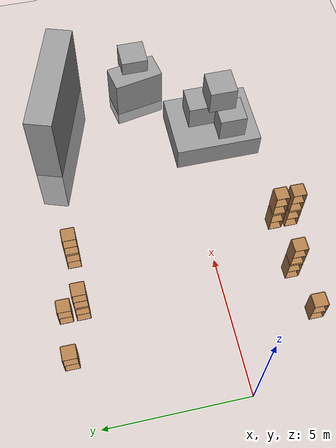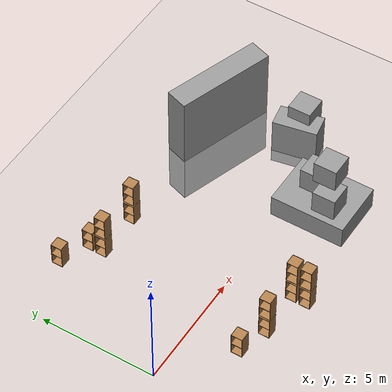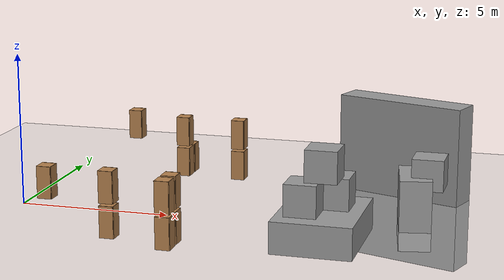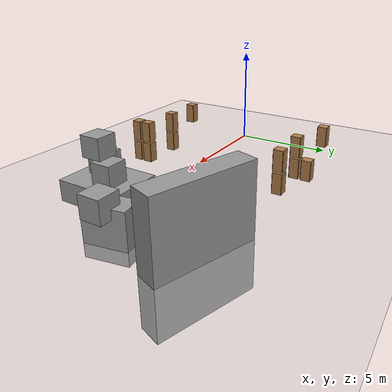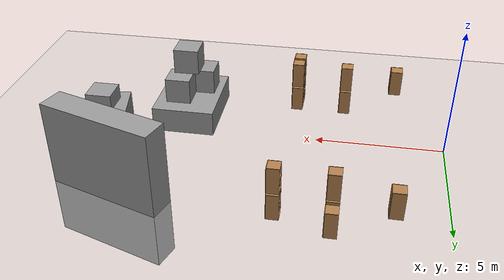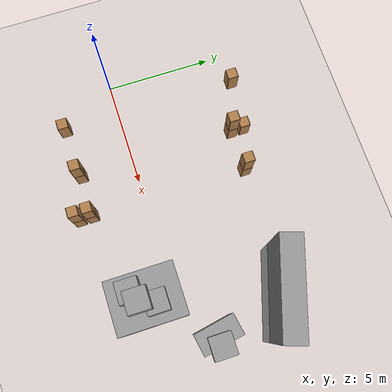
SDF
<sdf version="1.7">
 <world name="default">
  <model name="ground_plane">
   <static>1</static>
   <link name="link">
    <collision name="collision">
     <geometry><plane><normal>0 0 1</normal><size>100 100</size></plane></geometry>
     <surface><friction><ode><mu>100</mu><mu2>50</mu2></ode></friction></surface>
    </collision>
    <visual name="visual">
     <cast_shadows>0</cast_shadows>
     <geometry><plane><normal>0 0 1</normal><size>100 100</size></plane></geometry>
     <material>
      <script><uri>file://media/materials/scripts/gazebo.material</uri><name>Gazebo/Grey</name></script>
     </material>
    </visual>
   </link>
  </model>
  <model name="cabinet">
   <static>1</static>
   <link name="cabinet_bottom_plate">
    <inertial>
     <pose>0 0 -1 0 -0 0</pose>
     <inertia><ixx>2.05</ixx><ixy>0</ixy><ixz>0</ixz><iyy>2.05</iyy><iyz>0</iyz><izz>2.05</izz></inertia>
     <mass>25</mass>
    </inertial>
    <collision name="cabinet_bottom_plate_geom">
     <pose>0 0 0.01 0 -0 0</pose>
     <geometry><box><size>0.45 0.45 0.02</size></box></geometry>
    </collision>
    <visual name="cabinet_bottom_plate_geom_visual">
     <pose>0 0 0.01 0 -0 0</pose>
     <geometry><box><size>0.45 0.45 0.02</size></box></geometry>
     <material>
      <script><uri>file://media/materials/scripts/gazebo.material</uri><name>Gazebo/Wood</name></script>
     </material>
    </visual>
    <collision name="cabinet_bottom_plate_geom_cabinet_back_plate">
     <pose>0.235 0 0.51 0 -0 0</pose>
     <geometry><box><size>0.02 0.45 1.02</size></box></geometry>
    </collision>
    <visual name="cabinet_bottom_plate_geom_cabinet_back_plate_visual">
     <pose>0.235 0 0.51 0 -0 0</pose>
     <geometry><box><size>0.02 0.45 1.02</size></box></geometry>
     <material>
      <script><uri>file://media/materials/scripts/gazebo.material</uri><name>Gazebo/Wood</name></script>
     </material>
    </visual>
    <collision name="cabinet_bottom_plate_geom_cabinet_left_plate">
     <pose>0 0.235 0.51 0 -0 0</pose>
     <geometry><box><size>0.45 0.02 1.02</size></box></geometry>
    </collision>
    <visual name="cabinet_bottom_plate_geom_cabinet_left_plate_visual">
     <pose>0 0.235 0.51 0 -0 0</pose>
     <geometry><box><size>0.45 0.02 1.02</size></box></geometry>
     <material>
      <script><uri>file://media/materials/scripts/gazebo.material</uri><name>Gazebo/Wood</name></script>
     </material>
    </visual>
    <collision name="cabinet_bottom_plate_geom_cabinet_middle_plate">
     <pose>0 0 0.51 0 -0 0</pose>
     <geometry><box><size>0.45 0.45 0.02</size></box></geometry>
    </collision>
    <visual name="cabinet_bottom_plate_geom_cabinet_middle_plate_visual">
     <pose>0 0 0.51 0 -0 0</pose>
     <geometry><box><size>0.45 0.45 0.02</size></box></geometry>
     <material>
      <script><uri>file://media/materials/scripts/gazebo.material</uri><name>Gazebo/Wood</name></script>
     </material>
    </visual>
    <collision name="cabinet_bottom_plate_geom_cabinet_right_plate">
     <pose>0 -0.235 0.51 0 -0 0</pose>
     <geometry><box><size>0.45 0.02 1.02</size></box></geometry>
    </collision>
    <visual name="cabinet_bottom_plate_geom_cabinet_right_plate_visual">
     <pose>0 -0.235 0.51 0 -0 0</pose>
     <geometry><box><size>0.45 0.02 1.02</size></box></geometry>
     <material>
      <script><uri>file://media/materials/scripts/gazebo.material</uri><name>Gazebo/Wood</name></script>
     </material>
    </visual>
    <collision name="cabinet_bottom_plate_geom_cabinet_top_plate">
     <pose>0 0 1.01 0 -0 0</pose>
     <geometry><box><size>0.45 0.45 0.02</size></box></geometry>
    </collision>
    <visual name="cabinet_bottom_plate_geom_cabinet_top_plate_visual">
     <pose>0 0 1.01 0 -0 0</pose>
     <geometry><box><size>0.45 0.45 0.02</size></box></geometry>
     <material>
      <script><uri>file://media/materials/scripts/gazebo.material</uri><name>Gazebo/Wood</name></script>
     </material>
    </visual>
   </link>
   <pose>4 4.9 0 0 -0 0</pose>
  </model>
  <model name="cabinet_0">
   <static>1</static>
   <link name="cabinet_bottom_plate">
    <inertial>
     <pose>0 0 -1 0 -0 0</pose>
     <inertia><ixx>2.05</ixx><ixy>0</ixy><ixz>0</ixz><iyy>2.05</iyy><iyz>0</iyz><izz>2.05</izz></inertia>
     <mass>25</mass>
    </inertial>
    <collision name="cabinet_bottom_plate_geom">
     <pose>0 0 0.01 0 -0 0</pose>
     <geometry><box><size>0.45 0.45 0.02</size></box></geometry>
    </collision>
    <visual name="cabinet_bottom_plate_geom_visual">
     <pose>0 0 0.01 0 -0 0</pose>
     <geometry><box><size>0.45 0.45 0.02</size></box></geometry>
     <material>
      <script><uri>file://media/materials/scripts/gazebo.material</uri><name>Gazebo/Wood</name></script>
     </material>
    </visual>
    <collision name="cabinet_bottom_plate_geom_cabinet_back_plate">
     <pose>0.235 0 0.51 0 -0 0</pose>
     <geometry><box><size>0.02 0.45 1.02</size></box></geometry>
    </collision>
    <visual name="cabinet_bottom_plate_geom_cabinet_back_plate_visual">
     <pose>0.235 0 0.51 0 -0 0</pose>
     <geometry><box><size>0.02 0.45 1.02</size></box></geometry>
     <material>
      <script><uri>file://media/materials/scripts/gazebo.material</uri><name>Gazebo/Wood</name></script>
     </material>
    </visual>
    <collision name="cabinet_bottom_plate_geom_cabinet_left_plate">
     <pose>0 0.235 0.51 0 -0 0</pose>
     <geometry><box><size>0.45 0.02 1.02</size></box></geometry>
    </collision>
    <visual name="cabinet_bottom_plate_geom_cabinet_left_plate_visual">
     <pose>0 0.235 0.51 0 -0 0</pose>
     <geometry><box><size>0.45 0.02 1.02</size></box></geometry>
     <material>
      <script><uri>file://media/materials/scripts/gazebo.material</uri><name>Gazebo/Wood</name></script>
     </material>
    </visual>
    <collision name="cabinet_bottom_plate_geom_cabinet_middle_plate">
     <pose>0 0 0.51 0 -0 0</pose>
     <geometry><box><size>0.45 0.45 0.02</size></box></geometry>
    </collision>
    <visual name="cabinet_bottom_plate_geom_cabinet_middle_plate_visual">
     <pose>0 0 0.51 0 -0 0</pose>
     <geometry><box><size>0.45 0.45 0.02</size></box></geometry>
     <material>
      <script><uri>file://media/materials/scripts/gazebo.material</uri><name>Gazebo/Wood</name></script>
     </material>
    </visual>
    <collision name="cabinet_bottom_plate_geom_cabinet_right_plate">
     <pose>0 -0.235 0.51 0 -0 0</pose>
     <geometry><box><size>0.45 0.02 1.02</size></box></geometry>
    </collision>
    <visual name="cabinet_bottom_plate_geom_cabinet_right_plate_visual">
     <pose>0 -0.235 0.51 0 -0 0</pose>
     <geometry><box><size>0.45 0.02 1.02</size></box></geometry>
     <material>
      <script><uri>file://media/materials/scripts/gazebo.material</uri><name>Gazebo/Wood</name></script>
     </material>
    </visual>
    <collision name="cabinet_bottom_plate_geom_cabinet_top_plate">
     <pose>0 0 1.01 0 -0 0</pose>
     <geometry><box><size>0.45 0.45 0.02</size></box></geometry>
    </collision>
    <visual name="cabinet_bottom_plate_geom_cabinet_top_plate_visual">
     <pose>0 0 1.01 0 -0 0</pose>
     <geometry><box><size>0.45 0.45 0.02</size></box></geometry>
     <material>
      <script><uri>file://media/materials/scripts/gazebo.material</uri><name>Gazebo/Wood</name></script>
     </material>
    </visual>
   </link>
   <pose>4 5.5 0 0 -0 0</pose>
  </model>
  <model name="cabinet_26">
   <static>1</static>
   <link name="cabinet_bottom_plate">
    <inertial>
     <pose>0 0 -1 0 -0 0</pose>
     <inertia><ixx>2.05</ixx><ixy>0</ixy><ixz>0</ixz><iyy>2.05</iyy><iyz>0</iyz><izz>2.05</izz></inertia>
     <mass>25</mass>
    </inertial>
    <collision name="cabinet_bottom_plate_geom">
     <pose>0 0 0.01 0 -0 0</pose>
     <geometry><box><size>0.45 0.45 0.02</size></box></geometry>
    </collision>
    <visual name="cabinet_bottom_plate_geom_visual">
     <pose>0 0 0.01 0 -0 0</pose>
     <geometry><box><size>0.45 0.45 0.02</size></box></geometry>
     <material>
      <script><uri>file://media/materials/scripts/gazebo.material</uri><name>Gazebo/Wood</name></script>
     </material>
    </visual>
    <collision name="cabinet_bottom_plate_geom_cabinet_back_plate">
     <pose>0.235 0 0.51 0 -0 0</pose>
     <geometry><box><size>0.02 0.45 1.02</size></box></geometry>
    </collision>
    <visual name="cabinet_bottom_plate_geom_cabinet_back_plate_visual">
     <pose>0.235 0 0.51 0 -0 0</pose>
     <geometry><box><size>0.02 0.45 1.02</size></box></geometry>
     <material>
      <script><uri>file://media/materials/scripts/gazebo.material</uri><name>Gazebo/Wood</name></script>
     </material>
    </visual>
    <collision name="cabinet_bottom_plate_geom_cabinet_left_plate">
     <pose>0 0.235 0.51 0 -0 0</pose>
     <geometry><box><size>0.45 0.02 1.02</size></box></geometry>
    </collision>
    <visual name="cabinet_bottom_plate_geom_cabinet_left_plate_visual">
     <pose>0 0.235 0.51 0 -0 0</pose>
     <geometry><box><size>0.45 0.02 1.02</size></box></geometry>
     <material>
      <script><uri>file://media/materials/scripts/gazebo.material</uri><name>Gazebo/Wood</name></script>
     </material>
    </visual>
    <collision name="cabinet_bottom_plate_geom_cabinet_middle_plate">
     <pose>0 0 0.51 0 -0 0</pose>
     <geometry><box><size>0.45 0.45 0.02</size></box></geometry>
    </collision>
    <visual name="cabinet_bottom_plate_geom_cabinet_middle_plate_visual">
     <pose>0 0 0.51 0 -0 0</pose>
     <geometry><box><size>0.45 0.45 0.02</size></box></geometry>
     <material>
      <script><uri>file://media/materials/scripts/gazebo.material</uri><name>Gazebo/Wood</name></script>
     </material>
    </visual>
    <collision name="cabinet_bottom_plate_geom_cabinet_right_plate">
     <pose>0 -0.235 0.51 0 -0 0</pose>
     <geometry><box><size>0.45 0.02 1.02</size></box></geometry>
    </collision>
    <visual name="cabinet_bottom_plate_geom_cabinet_right_plate_visual">
     <pose>0 -0.235 0.51 0 -0 0</pose>
     <geometry><box><size>0.45 0.02 1.02</size></box></geometry>
     <material>
      <script><uri>file://media/materials/scripts/gazebo.material</uri><name>Gazebo/Wood</name></script>
     </material>
    </visual>
    <collision name="cabinet_bottom_plate_geom_cabinet_top_plate">
     <pose>0 0 1.01 0 -0 0</pose>
     <geometry><box><size>0.45 0.45 0.02</size></box></geometry>
    </collision>
    <visual name="cabinet_bottom_plate_geom_cabinet_top_plate_visual">
     <pose>0 0 1.01 0 -0 0</pose>
     <geometry><box><size>0.45 0.45 0.02</size></box></geometry>
     <material>
      <script><uri>file://media/materials/scripts/gazebo.material</uri><name>Gazebo/Wood</name></script>
     </material>
    </visual>
   </link>
   <pose>4 -2.5 0 0 -0 0</pose>
  </model>
  <model name="cabinet_40">
   <static>1</static>
   <link name="cabinet_bottom_plate">
    <inertial>
     <pose>0 0 -1 0 -0 0</pose>
     <inertia><ixx>2.05</ixx><ixy>0</ixy><ixz>0</ixz><iyy>2.05</iyy><iyz>0</iyz><izz>2.05</izz></inertia>
     <mass>25</mass>
    </inertial>
    <collision name="cabinet_bottom_plate_geom">
     <pose>0 0 0.01 0 -0 0</pose>
     <geometry><box><size>0.45 0.45 0.02</size></box></geometry>
    </collision>
    <visual name="cabinet_bottom_plate_geom_visual">
     <pose>0 0 0.01 0 -0 0</pose>
     <geometry><box><size>0.45 0.45 0.02</size></box></geometry>
     <material>
      <script><uri>file://media/materials/scripts/gazebo.material</uri><name>Gazebo/Wood</name></script>
     </material>
    </visual>
    <collision name="cabinet_bottom_plate_geom_cabinet_back_plate">
     <pose>0.235 0 0.51 0 -0 0</pose>
     <geometry><box><size>0.02 0.45 1.02</size></box></geometry>
    </collision>
    <visual name="cabinet_bottom_plate_geom_cabinet_back_plate_visual">
     <pose>0.235 0 0.51 0 -0 0</pose>
     <geometry><box><size>0.02 0.45 1.02</size></box></geometry>
     <material>
      <script><uri>file://media/materials/scripts/gazebo.material</uri><name>Gazebo/Wood</name></script>
     </material>
    </visual>
    <collision name="cabinet_bottom_plate_geom_cabinet_left_plate">
     <pose>0 0.235 0.51 0 -0 0</pose>
     <geometry><box><size>0.45 0.02 1.02</size></box></geometry>
    </collision>
    <visual name="cabinet_bottom_plate_geom_cabinet_left_plate_visual">
     <pose>0 0.235 0.51 0 -0 0</pose>
     <geometry><box><size>0.45 0.02 1.02</size></box></geometry>
     <material>
      <script><uri>file://media/materials/scripts/gazebo.material</uri><name>Gazebo/Wood</name></script>
     </material>
    </visual>
    <collision name="cabinet_bottom_plate_geom_cabinet_middle_plate">
     <pose>0 0 0.51 0 -0 0</pose>
     <geometry><box><size>0.45 0.45 0.02</size></box></geometry>
    </collision>
    <visual name="cabinet_bottom_plate_geom_cabinet_middle_plate_visual">
     <pose>0 0 0.51 0 -0 0</pose>
     <geometry><box><size>0.45 0.45 0.02</size></box></geometry>
     <material>
      <script><uri>file://media/materials/scripts/gazebo.material</uri><name>Gazebo/Wood</name></script>
     </material>
    </visual>
    <collision name="cabinet_bottom_plate_geom_cabinet_right_plate">
     <pose>0 -0.235 0.51 0 -0 0</pose>
     <geometry><box><size>0.45 0.02 1.02</size></box></geometry>
    </collision>
    <visual name="cabinet_bottom_plate_geom_cabinet_right_plate_visual">
     <pose>0 -0.235 0.51 0 -0 0</pose>
     <geometry><box><size>0.45 0.02 1.02</size></box></geometry>
     <material>
      <script><uri>file://media/materials/scripts/gazebo.material</uri><name>Gazebo/Wood</name></script>
     </material>
    </visual>
    <collision name="cabinet_bottom_plate_geom_cabinet_top_plate">
     <pose>0 0 1.01 0 -0 0</pose>
     <geometry><box><size>0.45 0.45 0.02</size></box></geometry>
    </collision>
    <visual name="cabinet_bottom_plate_geom_cabinet_top_plate_visual">
     <pose>0 0 1.01 0 -0 0</pose>
     <geometry><box><size>0.45 0.45 0.02</size></box></geometry>
     <material>
      <script><uri>file://media/materials/scripts/gazebo.material</uri><name>Gazebo/Wood</name></script>
     </material>
    </visual>
   </link>
   <pose>6 -2.5 0 0 -0 0</pose>
  </model>
  <model name="cabinet_41">
   <static>1</static>
   <link name="cabinet_bottom_plate">
    <inertial>
     <pose>0 0 -1 0 -0 0</pose>
     <inertia><ixx>2.05</ixx><ixy>0</ixy><ixz>0</ixz><iyy>2.05</iyy><iyz>0</iyz><izz>2.05</izz></inertia>
     <mass>25</mass>
    </inertial>
    <collision name="cabinet_bottom_plate_geom">
     <pose>0 0 0.01 0 -0 0</pose>
     <geometry><box><size>0.45 0.45 0.02</size></box></geometry>
    </collision>
    <visual name="cabinet_bottom_plate_geom_visual">
     <pose>0 0 0.01 0 -0 0</pose>
     <geometry><box><size>0.45 0.45 0.02</size></box></geometry>
     <material>
      <script><uri>file://media/materials/scripts/gazebo.material</uri><name>Gazebo/Wood</name></script>
     </material>
    </visual>
    <collision name="cabinet_bottom_plate_geom_cabinet_back_plate">
     <pose>0.235 0 0.51 0 -0 0</pose>
     <geometry><box><size>0.02 0.45 1.02</size></box></geometry>
    </collision>
    <visual name="cabinet_bottom_plate_geom_cabinet_back_plate_visual">
     <pose>0.235 0 0.51 0 -0 0</pose>
     <geometry><box><size>0.02 0.45 1.02</size></box></geometry>
     <material>
      <script><uri>file://media/materials/scripts/gazebo.material</uri><name>Gazebo/Wood</name></script>
     </material>
    </visual>
    <collision name="cabinet_bottom_plate_geom_cabinet_left_plate">
     <pose>0 0.235 0.51 0 -0 0</pose>
     <geometry><box><size>0.45 0.02 1.02</size></box></geometry>
    </collision>
    <visual name="cabinet_bottom_plate_geom_cabinet_left_plate_visual">
     <pose>0 0.235 0.51 0 -0 0</pose>
     <geometry><box><size>0.45 0.02 1.02</size></box></geometry>
     <material>
      <script><uri>file://media/materials/scripts/gazebo.material</uri><name>Gazebo/Wood</name></script>
     </material>
    </visual>
    <collision name="cabinet_bottom_plate_geom_cabinet_middle_plate">
     <pose>0 0 0.51 0 -0 0</pose>
     <geometry><box><size>0.45 0.45 0.02</size></box></geometry>
    </collision>
    <visual name="cabinet_bottom_plate_geom_cabinet_middle_plate_visual">
     <pose>0 0 0.51 0 -0 0</pose>
     <geometry><box><size>0.45 0.45 0.02</size></box></geometry>
     <material>
      <script><uri>file://media/materials/scripts/gazebo.material</uri><name>Gazebo/Wood</name></script>
     </material>
    </visual>
    <collision name="cabinet_bottom_plate_geom_cabinet_right_plate">
     <pose>0 -0.235 0.51 0 -0 0</pose>
     <geometry><box><size>0.45 0.02 1.02</size></box></geometry>
    </collision>
    <visual name="cabinet_bottom_plate_geom_cabinet_right_plate_visual">
     <pose>0 -0.235 0.51 0 -0 0</pose>
     <geometry><box><size>0.45 0.02 1.02</size></box></geometry>
     <material>
      <script><uri>file://media/materials/scripts/gazebo.material</uri><name>Gazebo/Wood</name></script>
     </material>
    </visual>
    <collision name="cabinet_bottom_plate_geom_cabinet_top_plate">
     <pose>0 0 1.01 0 -0 0</pose>
     <geometry><box><size>0.45 0.45 0.02</size></box></geometry>
    </collision>
    <visual name="cabinet_bottom_plate_geom_cabinet_top_plate_visual">
     <pose>0 0 1.01 0 -0 0</pose>
     <geometry><box><size>0.45 0.45 0.02</size></box></geometry>
     <material>
      <script><uri>file://media/materials/scripts/gazebo.material</uri><name>Gazebo/Wood</name></script>
     </material>
    </visual>
   </link>
   <pose>6 -3.1 0 0 -0 0</pose>
  </model>
  <model name="cabinet_61">
   <static>1</static>
   <link name="cabinet_bottom_plate">
    <inertial>
     <pose>0 0 -1 0 -0 0</pose>
     <inertia><ixx>2.05</ixx><ixy>0</ixy><ixz>0</ixz><iyy>2.05</iyy><iyz>0</iyz><izz>2.05</izz></inertia>
     <mass>25</mass>
    </inertial>
    <collision name="cabinet_bottom_plate_geom">
     <pose>0 0 0.01 0 -0 0</pose>
     <geometry><box><size>0.45 0.45 0.02</size></box></geometry>
    </collision>
    <visual name="cabinet_bottom_plate_geom_visual">
     <pose>0 0 0.01 0 -0 0</pose>
     <geometry><box><size>0.45 0.45 0.02</size></box></geometry>
     <material>
      <script><uri>file://media/materials/scripts/gazebo.material</uri><name>Gazebo/Wood</name></script>
     </material>
    </visual>
    <collision name="cabinet_bottom_plate_geom_cabinet_back_plate">
     <pose>0.235 0 0.51 0 -0 0</pose>
     <geometry><box><size>0.02 0.45 1.02</size></box></geometry>
    </collision>
    <visual name="cabinet_bottom_plate_geom_cabinet_back_plate_visual">
     <pose>0.235 0 0.51 0 -0 0</pose>
     <geometry><box><size>0.02 0.45 1.02</size></box></geometry>
     <material>
      <script><uri>file://media/materials/scripts/gazebo.material</uri><name>Gazebo/Wood</name></script>
     </material>
    </visual>
    <collision name="cabinet_bottom_plate_geom_cabinet_left_plate">
     <pose>0 0.235 0.51 0 -0 0</pose>
     <geometry><box><size>0.45 0.02 1.02</size></box></geometry>
    </collision>
    <visual name="cabinet_bottom_plate_geom_cabinet_left_plate_visual">
     <pose>0 0.235 0.51 0 -0 0</pose>
     <geometry><box><size>0.45 0.02 1.02</size></box></geometry>
     <material>
      <script><uri>file://media/materials/scripts/gazebo.material</uri><name>Gazebo/Wood</name></script>
     </material>
    </visual>
    <collision name="cabinet_bottom_plate_geom_cabinet_middle_plate">
     <pose>0 0 0.51 0 -0 0</pose>
     <geometry><box><size>0.45 0.45 0.02</size></box></geometry>
    </collision>
    <visual name="cabinet_bottom_plate_geom_cabinet_middle_plate_visual">
     <pose>0 0 0.51 0 -0 0</pose>
     <geometry><box><size>0.45 0.45 0.02</size></box></geometry>
     <material>
      <script><uri>file://media/materials/scripts/gazebo.material</uri><name>Gazebo/Wood</name></script>
     </material>
    </visual>
    <collision name="cabinet_bottom_plate_geom_cabinet_right_plate">
     <pose>0 -0.235 0.51 0 -0 0</pose>
     <geometry><box><size>0.45 0.02 1.02</size></box></geometry>
    </collision>
    <visual name="cabinet_bottom_plate_geom_cabinet_right_plate_visual">
     <pose>0 -0.235 0.51 0 -0 0</pose>
     <geometry><box><size>0.45 0.02 1.02</size></box></geometry>
     <material>
      <script><uri>file://media/materials/scripts/gazebo.material</uri><name>Gazebo/Wood</name></script>
     </material>
    </visual>
    <collision name="cabinet_bottom_plate_geom_cabinet_top_plate">
     <pose>0 0 1.01 0 -0 0</pose>
     <geometry><box><size>0.45 0.45 0.02</size></box></geometry>
    </collision>
    <visual name="cabinet_bottom_plate_geom_cabinet_top_plate_visual">
     <pose>0 0 1.01 0 -0 0</pose>
     <geometry><box><size>0.45 0.45 0.02</size></box></geometry>
     <material>
      <script><uri>file://media/materials/scripts/gazebo.material</uri><name>Gazebo/Wood</name></script>
     </material>
    </visual>
   </link>
   <pose>6 4.9 0 0 -0 0</pose>
  </model>
  <model name="cabinet_16_clone_0">
   <static>1</static>
   <link name="cabinet_bottom_plate">
    <inertial>
     <pose>0 0 -1 0 -0 0</pose>
     <inertia><ixx>2.05</ixx><ixy>0</ixy><ixz>0</ixz><iyy>2.05</iyy><iyz>0</iyz><izz>2.05</izz></inertia>
     <mass>25</mass>
    </inertial>
    <collision name="cabinet_bottom_plate_geom">
     <pose>0 0 0.01 0 -0 0</pose>
     <geometry><box><size>0.45 0.45 0.02</size></box></geometry>
    </collision>
    <visual name="cabinet_bottom_plate_geom_visual">
     <pose>0 0 0.01 0 -0 0</pose>
     <geometry><box><size>0.45 0.45 0.02</size></box></geometry>
     <material>
      <script><uri>file://media/materials/scripts/gazebo.material</uri><name>Gazebo/Wood</name></script>
     </material>
    </visual>
    <collision name="cabinet_bottom_plate_geom_cabinet_back_plate">
     <pose>0.235 0 0.51 0 -0 0</pose>
     <geometry><box><size>0.02 0.45 1.02</size></box></geometry>
    </collision>
    <visual name="cabinet_bottom_plate_geom_cabinet_back_plate_visual">
     <pose>0.235 0 0.51 0 -0 0</pose>
     <geometry><box><size>0.02 0.45 1.02</size></box></geometry>
     <material>
      <script><uri>file://media/materials/scripts/gazebo.material</uri><name>Gazebo/Wood</name></script>
     </material>
    </visual>
    <collision name="cabinet_bottom_plate_geom_cabinet_left_plate">
     <pose>0 0.235 0.51 0 -0 0</pose>
     <geometry><box><size>0.45 0.02 1.02</size></box></geometry>
    </collision>
    <visual name="cabinet_bottom_plate_geom_cabinet_left_plate_visual">
     <pose>0 0.235 0.51 0 -0 0</pose>
     <geometry><box><size>0.45 0.02 1.02</size></box></geometry>
     <material>
      <script><uri>file://media/materials/scripts/gazebo.material</uri><name>Gazebo/Wood</name></script>
     </material>
    </visual>
    <collision name="cabinet_bottom_plate_geom_cabinet_middle_plate">
     <pose>0 0 0.51 0 -0 0</pose>
     <geometry><box><size>0.45 0.45 0.02</size></box></geometry>
    </collision>
    <visual name="cabinet_bottom_plate_geom_cabinet_middle_plate_visual">
     <pose>0 0 0.51 0 -0 0</pose>
     <geometry><box><size>0.45 0.45 0.02</size></box></geometry>
     <material>
      <script><uri>file://media/materials/scripts/gazebo.material</uri><name>Gazebo/Wood</name></script>
     </material>
    </visual>
    <collision name="cabinet_bottom_plate_geom_cabinet_right_plate">
     <pose>0 -0.235 0.51 0 -0 0</pose>
     <geometry><box><size>0.45 0.02 1.02</size></box></geometry>
    </collision>
    <visual name="cabinet_bottom_plate_geom_cabinet_right_plate_visual">
     <pose>0 -0.235 0.51 0 -0 0</pose>
     <geometry><box><size>0.45 0.02 1.02</size></box></geometry>
     <material>
      <script><uri>file://media/materials/scripts/gazebo.material</uri><name>Gazebo/Wood</name></script>
     </material>
    </visual>
    <collision name="cabinet_bottom_plate_geom_cabinet_top_plate">
     <pose>0 0 1.01 0 -0 0</pose>
     <geometry><box><size>0.45 0.45 0.02</size></box></geometry>
    </collision>
    <visual name="cabinet_bottom_plate_geom_cabinet_top_plate_visual">
     <pose>0 0 1.01 0 -0 0</pose>
     <geometry><box><size>0.45 0.45 0.02</size></box></geometry>
     <material>
      <script><uri>file://media/materials/scripts/gazebo.material</uri><name>Gazebo/Wood</name></script>
     </material>
    </visual>
   </link>
   <pose>6 4.9 1.1 0 -0 0</pose>
  </model>
  <model name="cabinet_74">
   <static>1</static>
   <link name="cabinet_bottom_plate">
    <inertial>
     <pose>0 0 -1 0 -0 0</pose>
     <inertia><ixx>2.05</ixx><ixy>0</ixy><ixz>0</ixz><iyy>2.05</iyy><iyz>0</iyz><izz>2.05</izz></inertia>
     <mass>25</mass>
    </inertial>
    <collision name="cabinet_bottom_plate_geom">
     <pose>0 0 0.01 0 -0 0</pose>
     <geometry><box><size>0.45 0.45 0.02</size></box></geometry>
    </collision>
    <visual name="cabinet_bottom_plate_geom_visual">
     <pose>0 0 0.01 0 -0 0</pose>
     <geometry><box><size>0.45 0.45 0.02</size></box></geometry>
     <material>
      <script><uri>file://media/materials/scripts/gazebo.material</uri><name>Gazebo/Wood</name></script>
     </material>
    </visual>
    <collision name="cabinet_bottom_plate_geom_cabinet_back_plate">
     <pose>0.235 0 0.51 0 -0 0</pose>
     <geometry><box><size>0.02 0.45 1.02</size></box></geometry>
    </collision>
    <visual name="cabinet_bottom_plate_geom_cabinet_back_plate_visual">
     <pose>0.235 0 0.51 0 -0 0</pose>
     <geometry><box><size>0.02 0.45 1.02</size></box></geometry>
     <material>
      <script><uri>file://media/materials/scripts/gazebo.material</uri><name>Gazebo/Wood</name></script>
     </material>
    </visual>
    <collision name="cabinet_bottom_plate_geom_cabinet_left_plate">
     <pose>0 0.235 0.51 0 -0 0</pose>
     <geometry><box><size>0.45 0.02 1.02</size></box></geometry>
    </collision>
    <visual name="cabinet_bottom_plate_geom_cabinet_left_plate_visual">
     <pose>0 0.235 0.51 0 -0 0</pose>
     <geometry><box><size>0.45 0.02 1.02</size></box></geometry>
     <material>
      <script><uri>file://media/materials/scripts/gazebo.material</uri><name>Gazebo/Wood</name></script>
     </material>
    </visual>
    <collision name="cabinet_bottom_plate_geom_cabinet_middle_plate">
     <pose>0 0 0.51 0 -0 0</pose>
     <geometry><box><size>0.45 0.45 0.02</size></box></geometry>
    </collision>
    <visual name="cabinet_bottom_plate_geom_cabinet_middle_plate_visual">
     <pose>0 0 0.51 0 -0 0</pose>
     <geometry><box><size>0.45 0.45 0.02</size></box></geometry>
     <material>
      <script><uri>file://media/materials/scripts/gazebo.material</uri><name>Gazebo/Wood</name></script>
     </material>
    </visual>
    <collision name="cabinet_bottom_plate_geom_cabinet_right_plate">
     <pose>0 -0.235 0.51 0 -0 0</pose>
     <geometry><box><size>0.45 0.02 1.02</size></box></geometry>
    </collision>
    <visual name="cabinet_bottom_plate_geom_cabinet_right_plate_visual">
     <pose>0 -0.235 0.51 0 -0 0</pose>
     <geometry><box><size>0.45 0.02 1.02</size></box></geometry>
     <material>
      <script><uri>file://media/materials/scripts/gazebo.material</uri><name>Gazebo/Wood</name></script>
     </material>
    </visual>
    <collision name="cabinet_bottom_plate_geom_cabinet_top_plate">
     <pose>0 0 1.01 0 -0 0</pose>
     <geometry><box><size>0.45 0.45 0.02</size></box></geometry>
    </collision>
    <visual name="cabinet_bottom_plate_geom_cabinet_top_plate_visual">
     <pose>0 0 1.01 0 -0 0</pose>
     <geometry><box><size>0.45 0.45 0.02</size></box></geometry>
     <material>
      <script><uri>file://media/materials/scripts/gazebo.material</uri><name>Gazebo/Wood</name></script>
     </material>
    </visual>
   </link>
   <pose>4 4.9 1.1 0 -0 0</pose>
  </model>
  <model name="cabinet_78">
   <static>1</static>
   <link name="cabinet_bottom_plate">
    <inertial>
     <pose>0 0 -1 0 -0 0</pose>
     <inertia><ixx>2.05</ixx><ixy>0</ixy><ixz>0</ixz><iyy>2.05</iyy><iyz>0</iyz><izz>2.05</izz></inertia>
     <mass>25</mass>
    </inertial>
    <collision name="cabinet_bottom_plate_geom">
     <pose>0 0 0.01 0 -0 0</pose>
     <geometry><box><size>0.45 0.45 0.02</size></box></geometry>
    </collision>
    <visual name="cabinet_bottom_plate_geom_visual">
     <pose>0 0 0.01 0 -0 0</pose>
     <geometry><box><size>0.45 0.45 0.02</size></box></geometry>
     <material>
      <script><uri>file://media/materials/scripts/gazebo.material</uri><name>Gazebo/Wood</name></script>
     </material>
    </visual>
    <collision name="cabinet_bottom_plate_geom_cabinet_back_plate">
     <pose>0.235 0 0.51 0 -0 0</pose>
     <geometry><box><size>0.02 0.45 1.02</size></box></geometry>
    </collision>
    <visual name="cabinet_bottom_plate_geom_cabinet_back_plate_visual">
     <pose>0.235 0 0.51 0 -0 0</pose>
     <geometry><box><size>0.02 0.45 1.02</size></box></geometry>
     <material>
      <script><uri>file://media/materials/scripts/gazebo.material</uri><name>Gazebo/Wood</name></script>
     </material>
    </visual>
    <collision name="cabinet_bottom_plate_geom_cabinet_left_plate">
     <pose>0 0.235 0.51 0 -0 0</pose>
     <geometry><box><size>0.45 0.02 1.02</size></box></geometry>
    </collision>
    <visual name="cabinet_bottom_plate_geom_cabinet_left_plate_visual">
     <pose>0 0.235 0.51 0 -0 0</pose>
     <geometry><box><size>0.45 0.02 1.02</size></box></geometry>
     <material>
      <script><uri>file://media/materials/scripts/gazebo.material</uri><name>Gazebo/Wood</name></script>
     </material>
    </visual>
    <collision name="cabinet_bottom_plate_geom_cabinet_middle_plate">
     <pose>0 0 0.51 0 -0 0</pose>
     <geometry><box><size>0.45 0.45 0.02</size></box></geometry>
    </collision>
    <visual name="cabinet_bottom_plate_geom_cabinet_middle_plate_visual">
     <pose>0 0 0.51 0 -0 0</pose>
     <geometry><box><size>0.45 0.45 0.02</size></box></geometry>
     <material>
      <script><uri>file://media/materials/scripts/gazebo.material</uri><name>Gazebo/Wood</name></script>
     </material>
    </visual>
    <collision name="cabinet_bottom_plate_geom_cabinet_right_plate">
     <pose>0 -0.235 0.51 0 -0 0</pose>
     <geometry><box><size>0.45 0.02 1.02</size></box></geometry>
    </collision>
    <visual name="cabinet_bottom_plate_geom_cabinet_right_plate_visual">
     <pose>0 -0.235 0.51 0 -0 0</pose>
     <geometry><box><size>0.45 0.02 1.02</size></box></geometry>
     <material>
      <script><uri>file://media/materials/scripts/gazebo.material</uri><name>Gazebo/Wood</name></script>
     </material>
    </visual>
    <collision name="cabinet_bottom_plate_geom_cabinet_top_plate">
     <pose>0 0 1.01 0 -0 0</pose>
     <geometry><box><size>0.45 0.45 0.02</size></box></geometry>
    </collision>
    <visual name="cabinet_bottom_plate_geom_cabinet_top_plate_visual">
     <pose>0 0 1.01 0 -0 0</pose>
     <geometry><box><size>0.45 0.45 0.02</size></box></geometry>
     <material>
      <script><uri>file://media/materials/scripts/gazebo.material</uri><name>Gazebo/Wood</name></script>
     </material>
    </visual>
   </link>
   <pose>6 -2.5 1.1 0 -0 0</pose>
  </model>
  <model name="cabinet_79">
   <static>1</static>
   <link name="cabinet_bottom_plate">
    <inertial>
     <pose>0 0 -1 0 -0 0</pose>
     <inertia><ixx>2.05</ixx><ixy>0</ixy><ixz>0</ixz><iyy>2.05</iyy><iyz>0</iyz><izz>2.05</izz></inertia>
     <mass>25</mass>
    </inertial>
    <collision name="cabinet_bottom_plate_geom">
     <pose>0 0 0.01 0 -0 0</pose>
     <geometry><box><size>0.45 0.45 0.02</size></box></geometry>
    </collision>
    <visual name="cabinet_bottom_plate_geom_visual">
     <pose>0 0 0.01 0 -0 0</pose>
     <geometry><box><size>0.45 0.45 0.02</size></box></geometry>
     <material>
      <script><uri>file://media/materials/scripts/gazebo.material</uri><name>Gazebo/Wood</name></script>
     </material>
    </visual>
    <collision name="cabinet_bottom_plate_geom_cabinet_back_plate">
     <pose>0.235 0 0.51 0 -0 0</pose>
     <geometry><box><size>0.02 0.45 1.02</size></box></geometry>
    </collision>
    <visual name="cabinet_bottom_plate_geom_cabinet_back_plate_visual">
     <pose>0.235 0 0.51 0 -0 0</pose>
     <geometry><box><size>0.02 0.45 1.02</size></box></geometry>
     <material>
      <script><uri>file://media/materials/scripts/gazebo.material</uri><name>Gazebo/Wood</name></script>
     </material>
    </visual>
    <collision name="cabinet_bottom_plate_geom_cabinet_left_plate">
     <pose>0 0.235 0.51 0 -0 0</pose>
     <geometry><box><size>0.45 0.02 1.02</size></box></geometry>
    </collision>
    <visual name="cabinet_bottom_plate_geom_cabinet_left_plate_visual">
     <pose>0 0.235 0.51 0 -0 0</pose>
     <geometry><box><size>0.45 0.02 1.02</size></box></geometry>
     <material>
      <script><uri>file://media/materials/scripts/gazebo.material</uri><name>Gazebo/Wood</name></script>
     </material>
    </visual>
    <collision name="cabinet_bottom_plate_geom_cabinet_middle_plate">
     <pose>0 0 0.51 0 -0 0</pose>
     <geometry><box><size>0.45 0.45 0.02</size></box></geometry>
    </collision>
    <visual name="cabinet_bottom_plate_geom_cabinet_middle_plate_visual">
     <pose>0 0 0.51 0 -0 0</pose>
     <geometry><box><size>0.45 0.45 0.02</size></box></geometry>
     <material>
      <script><uri>file://media/materials/scripts/gazebo.material</uri><name>Gazebo/Wood</name></script>
     </material>
    </visual>
    <collision name="cabinet_bottom_plate_geom_cabinet_right_plate">
     <pose>0 -0.235 0.51 0 -0 0</pose>
     <geometry><box><size>0.45 0.02 1.02</size></box></geometry>
    </collision>
    <visual name="cabinet_bottom_plate_geom_cabinet_right_plate_visual">
     <pose>0 -0.235 0.51 0 -0 0</pose>
     <geometry><box><size>0.45 0.02 1.02</size></box></geometry>
     <material>
      <script><uri>file://media/materials/scripts/gazebo.material</uri><name>Gazebo/Wood</name></script>
     </material>
    </visual>
    <collision name="cabinet_bottom_plate_geom_cabinet_top_plate">
     <pose>0 0 1.01 0 -0 0</pose>
     <geometry><box><size>0.45 0.45 0.02</size></box></geometry>
    </collision>
    <visual name="cabinet_bottom_plate_geom_cabinet_top_plate_visual">
     <pose>0 0 1.01 0 -0 0</pose>
     <geometry><box><size>0.45 0.45 0.02</size></box></geometry>
     <material>
      <script><uri>file://media/materials/scripts/gazebo.material</uri><name>Gazebo/Wood</name></script>
     </material>
    </visual>
   </link>
   <pose>6 -3.1 1.1 0 -0 0</pose>
  </model>
  <model name="cabinet_91">
   <static>1</static>
   <link name="cabinet_bottom_plate">
    <inertial>
     <pose>0 0 -1 0 -0 0</pose>
     <inertia><ixx>2.05</ixx><ixy>0</ixy><ixz>0</ixz><iyy>2.05</iyy><iyz>0</iyz><izz>2.05</izz></inertia>
     <mass>25</mass>
    </inertial>
    <collision name="cabinet_bottom_plate_geom">
     <pose>0 0 0.01 0 -0 0</pose>
     <geometry><box><size>0.45 0.45 0.02</size></box></geometry>
    </collision>
    <visual name="cabinet_bottom_plate_geom_visual">
     <pose>0 0 0.01 0 -0 0</pose>
     <geometry><box><size>0.45 0.45 0.02</size></box></geometry>
     <material>
      <script><uri>file://media/materials/scripts/gazebo.material</uri><name>Gazebo/Wood</name></script>
     </material>
    </visual>
    <collision name="cabinet_bottom_plate_geom_cabinet_back_plate">
     <pose>0.235 0 0.51 0 -0 0</pose>
     <geometry><box><size>0.02 0.45 1.02</size></box></geometry>
    </collision>
    <visual name="cabinet_bottom_plate_geom_cabinet_back_plate_visual">
     <pose>0.235 0 0.51 0 -0 0</pose>
     <geometry><box><size>0.02 0.45 1.02</size></box></geometry>
     <material>
      <script><uri>file://media/materials/scripts/gazebo.material</uri><name>Gazebo/Wood</name></script>
     </material>
    </visual>
    <collision name="cabinet_bottom_plate_geom_cabinet_left_plate">
     <pose>0 0.235 0.51 0 -0 0</pose>
     <geometry><box><size>0.45 0.02 1.02</size></box></geometry>
    </collision>
    <visual name="cabinet_bottom_plate_geom_cabinet_left_plate_visual">
     <pose>0 0.235 0.51 0 -0 0</pose>
     <geometry><box><size>0.45 0.02 1.02</size></box></geometry>
     <material>
      <script><uri>file://media/materials/scripts/gazebo.material</uri><name>Gazebo/Wood</name></script>
     </material>
    </visual>
    <collision name="cabinet_bottom_plate_geom_cabinet_middle_plate">
     <pose>0 0 0.51 0 -0 0</pose>
     <geometry><box><size>0.45 0.45 0.02</size></box></geometry>
    </collision>
    <visual name="cabinet_bottom_plate_geom_cabinet_middle_plate_visual">
     <pose>0 0 0.51 0 -0 0</pose>
     <geometry><box><size>0.45 0.45 0.02</size></box></geometry>
     <material>
      <script><uri>file://media/materials/scripts/gazebo.material</uri><name>Gazebo/Wood</name></script>
     </material>
    </visual>
    <collision name="cabinet_bottom_plate_geom_cabinet_right_plate">
     <pose>0 -0.235 0.51 0 -0 0</pose>
     <geometry><box><size>0.45 0.02 1.02</size></box></geometry>
    </collision>
    <visual name="cabinet_bottom_plate_geom_cabinet_right_plate_visual">
     <pose>0 -0.235 0.51 0 -0 0</pose>
     <geometry><box><size>0.45 0.02 1.02</size></box></geometry>
     <material>
      <script><uri>file://media/materials/scripts/gazebo.material</uri><name>Gazebo/Wood</name></script>
     </material>
    </visual>
    <collision name="cabinet_bottom_plate_geom_cabinet_top_plate">
     <pose>0 0 1.01 0 -0 0</pose>
     <geometry><box><size>0.45 0.45 0.02</size></box></geometry>
    </collision>
    <visual name="cabinet_bottom_plate_geom_cabinet_top_plate_visual">
     <pose>0 0 1.01 0 -0 0</pose>
     <geometry><box><size>0.45 0.45 0.02</size></box></geometry>
     <material>
      <script><uri>file://media/materials/scripts/gazebo.material</uri><name>Gazebo/Wood</name></script>
     </material>
    </visual>
   </link>
   <pose>2 5.5 1.1 0 -0 0</pose>
  </model>
  <model name="cabinet_109">
   <static>1</static>
   <link name="cabinet_bottom_plate">
    <inertial>
     <pose>0 0 -1 0 -0 0</pose>
     <inertia><ixx>2.05</ixx><ixy>0</ixy><ixz>0</ixz><iyy>2.05</iyy><iyz>0</iyz><izz>2.05</izz></inertia>
     <mass>25</mass>
    </inertial>
    <collision name="cabinet_bottom_plate_geom">
     <pose>0 0 0.01 0 -0 0</pose>
     <geometry><box><size>0.45 0.45 0.02</size></box></geometry>
    </collision>
    <visual name="cabinet_bottom_plate_geom_visual">
     <pose>0 0 0.01 0 -0 0</pose>
     <geometry><box><size>0.45 0.45 0.02</size></box></geometry>
     <material>
      <script><uri>file://media/materials/scripts/gazebo.material</uri><name>Gazebo/Wood</name></script>
     </material>
    </visual>
    <collision name="cabinet_bottom_plate_geom_cabinet_back_plate">
     <pose>0.235 0 0.51 0 -0 0</pose>
     <geometry><box><size>0.02 0.45 1.02</size></box></geometry>
    </collision>
    <visual name="cabinet_bottom_plate_geom_cabinet_back_plate_visual">
     <pose>0.235 0 0.51 0 -0 0</pose>
     <geometry><box><size>0.02 0.45 1.02</size></box></geometry>
     <material>
      <script><uri>file://media/materials/scripts/gazebo.material</uri><name>Gazebo/Wood</name></script>
     </material>
    </visual>
    <collision name="cabinet_bottom_plate_geom_cabinet_left_plate">
     <pose>0 0.235 0.51 0 -0 0</pose>
     <geometry><box><size>0.45 0.02 1.02</size></box></geometry>
    </collision>
    <visual name="cabinet_bottom_plate_geom_cabinet_left_plate_visual">
     <pose>0 0.235 0.51 0 -0 0</pose>
     <geometry><box><size>0.45 0.02 1.02</size></box></geometry>
     <material>
      <script><uri>file://media/materials/scripts/gazebo.material</uri><name>Gazebo/Wood</name></script>
     </material>
    </visual>
    <collision name="cabinet_bottom_plate_geom_cabinet_middle_plate">
     <pose>0 0 0.51 0 -0 0</pose>
     <geometry><box><size>0.45 0.45 0.02</size></box></geometry>
    </collision>
    <visual name="cabinet_bottom_plate_geom_cabinet_middle_plate_visual">
     <pose>0 0 0.51 0 -0 0</pose>
     <geometry><box><size>0.45 0.45 0.02</size></box></geometry>
     <material>
      <script><uri>file://media/materials/scripts/gazebo.material</uri><name>Gazebo/Wood</name></script>
     </material>
    </visual>
    <collision name="cabinet_bottom_plate_geom_cabinet_right_plate">
     <pose>0 -0.235 0.51 0 -0 0</pose>
     <geometry><box><size>0.45 0.02 1.02</size></box></geometry>
    </collision>
    <visual name="cabinet_bottom_plate_geom_cabinet_right_plate_visual">
     <pose>0 -0.235 0.51 0 -0 0</pose>
     <geometry><box><size>0.45 0.02 1.02</size></box></geometry>
     <material>
      <script><uri>file://media/materials/scripts/gazebo.material</uri><name>Gazebo/Wood</name></script>
     </material>
    </visual>
    <collision name="cabinet_bottom_plate_geom_cabinet_top_plate">
     <pose>0 0 1.01 0 -0 0</pose>
     <geometry><box><size>0.45 0.45 0.02</size></box></geometry>
    </collision>
    <visual name="cabinet_bottom_plate_geom_cabinet_top_plate_visual">
     <pose>0 0 1.01 0 -0 0</pose>
     <geometry><box><size>0.45 0.45 0.02</size></box></geometry>
     <material>
      <script><uri>file://media/materials/scripts/gazebo.material</uri><name>Gazebo/Wood</name></script>
     </material>
    </visual>
   </link>
   <pose>4 -2.5 1.1 0 -0 0</pose>
  </model>
  <model name="cabinet_110">
   <static>1</static>
   <link name="cabinet_bottom_plate">
    <inertial>
     <pose>0 0 -1 0 -0 0</pose>
     <inertia><ixx>2.05</ixx><ixy>0</ixy><ixz>0</ixz><iyy>2.05</iyy><iyz>0</iyz><izz>2.05</izz></inertia>
     <mass>25</mass>
    </inertial>
    <collision name="cabinet_bottom_plate_geom">
     <pose>0 0 0.01 0 -0 0</pose>
     <geometry><box><size>0.45 0.45 0.02</size></box></geometry>
    </collision>
    <visual name="cabinet_bottom_plate_geom_visual">
     <pose>0 0 0.01 0 -0 0</pose>
     <geometry><box><size>0.45 0.45 0.02</size></box></geometry>
     <material>
      <script><uri>file://media/materials/scripts/gazebo.material</uri><name>Gazebo/Wood</name></script>
     </material>
    </visual>
    <collision name="cabinet_bottom_plate_geom_cabinet_back_plate">
     <pose>0.235 0 0.51 0 -0 0</pose>
     <geometry><box><size>0.02 0.45 1.02</size></box></geometry>
    </collision>
    <visual name="cabinet_bottom_plate_geom_cabinet_back_plate_visual">
     <pose>0.235 0 0.51 0 -0 0</pose>
     <geometry><box><size>0.02 0.45 1.02</size></box></geometry>
     <material>
      <script><uri>file://media/materials/scripts/gazebo.material</uri><name>Gazebo/Wood</name></script>
     </material>
    </visual>
    <collision name="cabinet_bottom_plate_geom_cabinet_left_plate">
     <pose>0 0.235 0.51 0 -0 0</pose>
     <geometry><box><size>0.45 0.02 1.02</size></box></geometry>
    </collision>
    <visual name="cabinet_bottom_plate_geom_cabinet_left_plate_visual">
     <pose>0 0.235 0.51 0 -0 0</pose>
     <geometry><box><size>0.45 0.02 1.02</size></box></geometry>
     <material>
      <script><uri>file://media/materials/scripts/gazebo.material</uri><name>Gazebo/Wood</name></script>
     </material>
    </visual>
    <collision name="cabinet_bottom_plate_geom_cabinet_middle_plate">
     <pose>0 0 0.51 0 -0 0</pose>
     <geometry><box><size>0.45 0.45 0.02</size></box></geometry>
    </collision>
    <visual name="cabinet_bottom_plate_geom_cabinet_middle_plate_visual">
     <pose>0 0 0.51 0 -0 0</pose>
     <geometry><box><size>0.45 0.45 0.02</size></box></geometry>
     <material>
      <script><uri>file://media/materials/scripts/gazebo.material</uri><name>Gazebo/Wood</name></script>
     </material>
    </visual>
    <collision name="cabinet_bottom_plate_geom_cabinet_right_plate">
     <pose>0 -0.235 0.51 0 -0 0</pose>
     <geometry><box><size>0.45 0.02 1.02</size></box></geometry>
    </collision>
    <visual name="cabinet_bottom_plate_geom_cabinet_right_plate_visual">
     <pose>0 -0.235 0.51 0 -0 0</pose>
     <geometry><box><size>0.45 0.02 1.02</size></box></geometry>
     <material>
      <script><uri>file://media/materials/scripts/gazebo.material</uri><name>Gazebo/Wood</name></script>
     </material>
    </visual>
    <collision name="cabinet_bottom_plate_geom_cabinet_top_plate">
     <pose>0 0 1.01 0 -0 0</pose>
     <geometry><box><size>0.45 0.45 0.02</size></box></geometry>
    </collision>
    <visual name="cabinet_bottom_plate_geom_cabinet_top_plate_visual">
     <pose>0 0 1.01 0 -0 0</pose>
     <geometry><box><size>0.45 0.45 0.02</size></box></geometry>
     <material>
      <script><uri>file://media/materials/scripts/gazebo.material</uri><name>Gazebo/Wood</name></script>
     </material>
    </visual>
   </link>
   <pose>2 -2.5 1.1 0 -0 0</pose>
  </model>
  <model name="unit_box">
   <pose>10.3653 -1.23056 0.5 0 -0 0</pose>
   <link name="link">
    <inertial>
     <mass>1</mass>
     <inertia>
      <ixx>0.166667</ixx>
      <ixy>0</ixy>
      <ixz>0</ixz>
      <iyy>0.166667</iyy>
      <iyz>0</iyz>
      <izz>0.166667</izz>
     </inertia>
    </inertial>
    <collision name="collision"><geometry><box><size>2.49356 3.22172 1</size></box></geometry></collision>
    <visual name="visual">
     <geometry><box><size>2.49356 3.22172 1</size></box></geometry>
     <material>
      <script><name>Gazebo/Grey</name><uri>file://media/materials/scripts/gazebo.material</uri></script>
     </material>
    </visual>
   </link>
  </model>
  <model name="unit_box_0">
   <pose>10.683 -0.783534 1.5 0 -0 0</pose>
   <link name="link">
    <inertial>
     <mass>1</mass>
     <inertia>
      <ixx>0.166667</ixx>
      <ixy>0</ixy>
      <ixz>0</ixz>
      <iyy>0.166667</iyy>
      <iyz>0</iyz>
      <izz>0.166667</izz>
     </inertia>
    </inertial>
    <collision name="collision"><geometry><box><size>1 1 1</size></box></geometry></collision>
    <visual name="visual">
     <geometry><box><size>1 1 1</size></box></geometry>
     <material>
      <script><name>Gazebo/Grey</name><uri>file://media/materials/scripts/gazebo.material</uri></script>
     </material>
    </visual>
   </link>
  </model>
  <model name="unit_box_1">
   <pose>12.7686 1.28029 0.5 0 -0 0.185859</pose>
   <link name="link">
    <inertial>
     <mass>1</mass>
     <inertia>
      <ixx>0.166667</ixx>
      <ixy>0</ixy>
      <ixz>0</ixz>
      <iyy>0.166667</iyy>
      <iyz>0</iyz>
      <izz>0.166667</izz>
     </inertia>
    </inertial>
    <collision name="collision"><geometry><box><size>1 1.89624 2.248</size></box></geometry></collision>
    <visual name="visual">
     <geometry><box><size>1 1.89624 2.248</size></box></geometry>
     <material>
      <script><name>Gazebo/Grey</name><uri>file://media/materials/scripts/gazebo.material</uri></script>
     </material>
    </visual>
   </link>
  </model>
  <model name="unit_box_2">
   <pose>13.2164 1.2629 1.71412 0 -0 0</pose>
   <link name="link">
    <inertial>
     <mass>1</mass>
     <inertia>
      <ixx>0.166667</ixx>
      <ixy>0</ixy>
      <ixz>0</ixz>
      <iyy>0.166667</iyy>
      <iyz>0</iyz>
      <izz>0.166667</izz>
     </inertia>
    </inertial>
    <collision name="collision"><geometry><box><size>1 1 1</size></box></geometry></collision>
    <visual name="visual">
     <geometry><box><size>1 1 1</size></box></geometry>
     <material>
      <script><name>Gazebo/Grey</name><uri>file://media/materials/scripts/gazebo.material</uri></script>
     </material>
    </visual>
   </link>
  </model>
  <model name="unit_box_3">
   <pose>9.90454 -1.77467 1.5 0 -0 0</pose>
   <link name="link">
    <inertial>
     <mass>1</mass>
     <inertia>
      <ixx>0.166667</ixx>
      <ixy>0</ixy>
      <ixz>0</ixz>
      <iyy>0.166667</iyy>
      <iyz>0</iyz>
      <izz>0.166667</izz>
     </inertia>
    </inertial>
    <collision name="collision"><geometry><box><size>1 1 1</size></box></geometry></collision>
    <visual name="visual">
     <geometry><box><size>1 1 1</size></box></geometry>
     <material>
      <script><name>Gazebo/Grey</name><uri>file://media/materials/scripts/gazebo.material</uri></script>
     </material>
    </visual>
   </link>
  </model>
  <model name="unit_box_4">
   <pose>10.4589 -1.46848 2.5 0 -0 0</pose>
   <link name="link">
    <inertial>
     <mass>1</mass>
     <inertia>
      <ixx>0.166667</ixx>
      <ixy>0</ixy>
      <ixz>0</ixz>
      <iyy>0.166667</iyy>
      <iyz>0</iyz>
      <izz>0.166667</izz>
     </inertia>
    </inertial>
    <collision name="collision"><geometry><box><size>1 1 1</size></box></geometry></collision>
    <visual name="visual">
     <geometry><box><size>1 1 1</size></box></geometry>
     <material>
      <script><name>Gazebo/Grey</name><uri>file://media/materials/scripts/gazebo.material</uri></script>
     </material>
    </visual>
   </link>
  </model>
  <model name="unit_box_1_clone">
   <pose>11.9045 4.54851 0.5 -0.000112 0.000202 1.25006</pose>
   <link name="link">
    <inertial>
     <mass>1</mass>
     <inertia>
      <ixx>0.166667</ixx>
      <ixy>0</ixy>
      <ixz>0</ixz>
      <iyy>0.166667</iyy>
      <iyz>0</iyz>
      <izz>0.166667</izz>
     </inertia>
    </inertial>
    <collision name="collision"><geometry><box><size>1 4.41458 5.48903</size></box></geometry></collision>
    <visual name="visual">
     <geometry><box><size>1 4.41458 5.48903</size></box></geometry>
     <material>
      <script><name>Gazebo/Grey</name><uri>file://media/materials/scripts/gazebo.material</uri></script>
     </material>
    </visual>
   </link>
  </model>
 </world>
</sdf>
